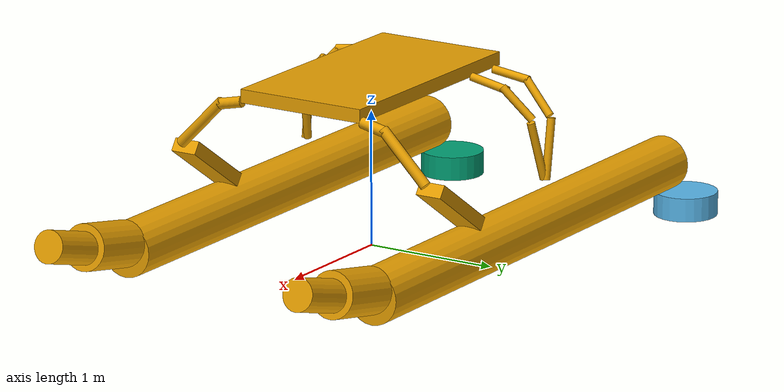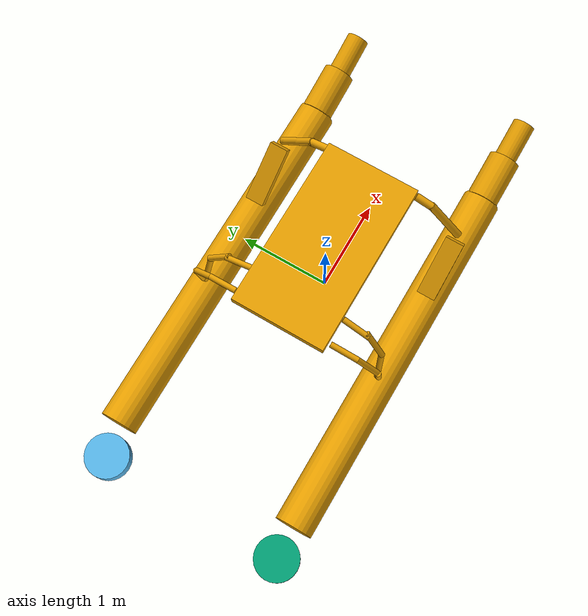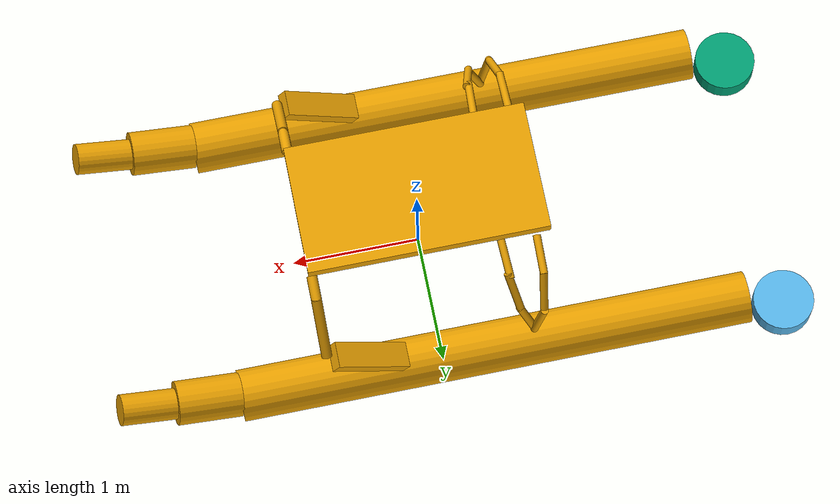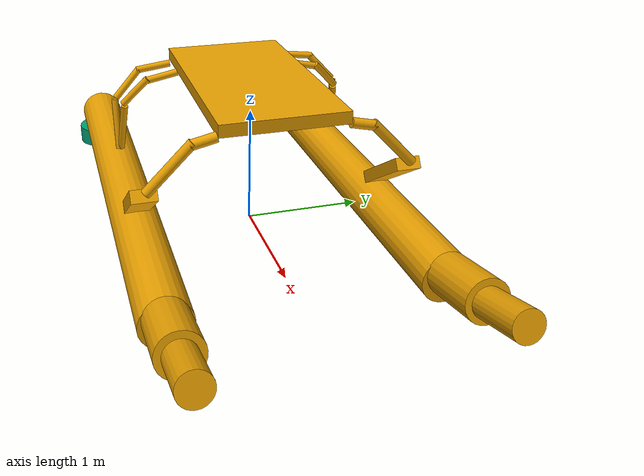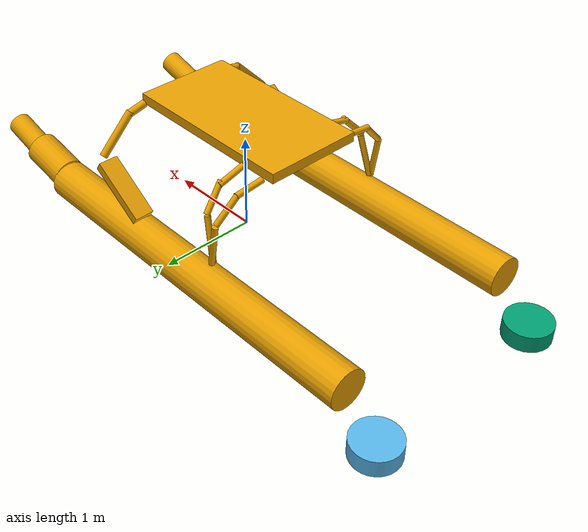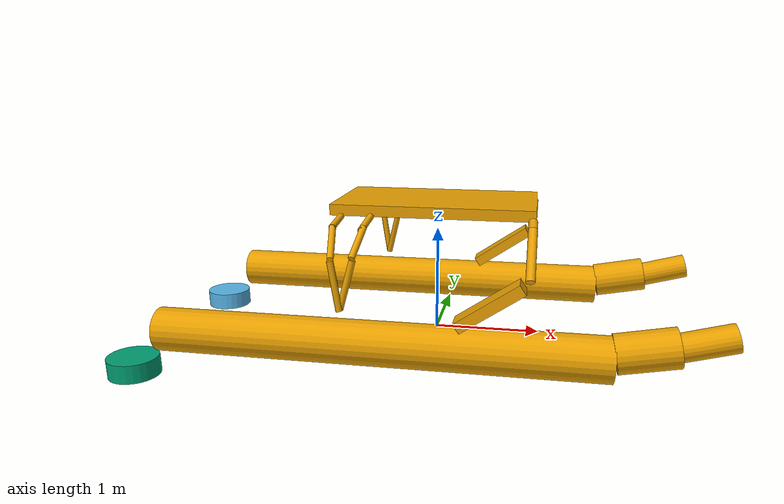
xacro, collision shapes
<?xml version="1.0"?>
<robot name="boat">
  <link name="base_link">
    <inertial>
      <origin xyz="0 0 0.124229" rpy="0 0 0"/>
      <mass value="227"/>
      <inertia ixx="181.42" ixy="0" ixz="0" iyy="408.203" iyz="0" izz="495.037"/>
    </inertial>
    <collision name="left_float">
      <origin xyz="-0.4 1.03 0.2" rpy="3.14159 1.57079 3.14159"/>
      <geometry>
        <cylinder length="4" radius="0.2"/>
      </geometry>
    </collision>
    <collision name="left_mid_float">
      <origin xyz="1.85 1.03 0.3" rpy="0 1.38 0"/>
      <geometry>
        <cylinder length="0.5" radius="0.17"/>
      </geometry>
    </collision>
    <collision name="left_front_float">
      <origin xyz="2.3 1.03 0.4" rpy="0 1.3 0"/>
      <geometry>
        <cylinder length="0.45" radius="0.12"/>
      </geometry>
    </collision>
    <collision name="front_left_beam_lower">
      <origin xyz="0.9 0.85 1" rpy="0.78 0 0"/>
      <geometry>
        <cylinder length="0.5" radius="0.04"/>
      </geometry>
    </collision>
    <collision name="front_left_beam_upper">
      <origin xyz="0.9 0.6 1.18" rpy="1.35 0 0"/>
      <geometry>
        <cylinder length="0.2" radius="0.04"/>
      </geometry>
    </collision>
    <collision name="mid_left_beam_lower">
      <origin xyz="-0.65 0.99 0.7" rpy="0.1 0.25 0"/>
      <geometry>
        <cylinder length="0.45" radius="0.03"/>
      </geometry>
    </collision>
    <collision name="mid_left_beam_medium">
      <origin xyz="-0.57 0.87 1.05" rpy="0.75 0.25 0"/>
      <geometry>
        <cylinder length="0.32" radius="0.03"/>
      </geometry>
    </collision>
    <collision name="mid_left_beam_upper">
      <origin xyz="-0.55 0.65 1.17" rpy="1.35 0.25 0"/>
      <geometry>
        <cylinder length="0.3" radius="0.03"/>
      </geometry>
    </collision>
    <collision name="rear_left_beam_lower">
      <origin xyz="-0.74 1.03 0.7" rpy="0 -0.15 0"/>
      <geometry>
        <cylinder length="0.45" radius="0.03"/>
      </geometry>
    </collision>
    <collision name="rear_left_beam_medium">
      <origin xyz="-0.79 0.91 1.05" rpy="0.75 -0.15 0"/>
      <geometry>
        <cylinder length="0.32" radius="0.03"/>
      </geometry>
    </collision>
    <collision name="rear_left_beam_upper">
      <origin xyz="-0.81 0.67 1.18" rpy="1.45 -0.15 0"/>
      <geometry>
        <cylinder length="0.3" radius="0.03"/>
      </geometry>
    </collision>
    <collision name="left_joint_collision">
      <origin xyz="0.58 1.03 0.6" rpy="0 -0.6 0"/>
      <geometry>
        <box size="0.65 0.2 0.1"/>
      </geometry>
    </collision>
    <collision name="right_float">
      <origin xyz="-0.4 -1.03 0.2" rpy="3.14159 1.57079 3.14159"/>
      <geometry>
        <cylinder length="4" radius="0.2"/>
      </geometry>
    </collision>
    <collision name="right_mid_float">
      <origin xyz="1.85 -1.03 0.3" rpy="0 1.38 0"/>
      <geometry>
        <cylinder length="0.5" radius="0.17"/>
      </geometry>
    </collision>
    <collision name="right_front_float">
      <origin xyz="2.3 -1.03 0.4" rpy="0 1.3 0"/>
      <geometry>
        <cylinder length="0.45" radius="0.12"/>
      </geometry>
    </collision>
    <collision name="front_right_beam_lower">
      <origin xyz="0.9 -0.85 1" rpy="-0.78 0 0"/>
      <geometry>
        <cylinder length="0.5" radius="0.04"/>
      </geometry>
    </collision>
    <collision name="front_right_beam_upper">
      <origin xyz="0.9 -0.6 1.18" rpy="-1.35 0 0"/>
      <geometry>
        <cylinder length="0.2" radius="0.04"/>
      </geometry>
    </collision>
    <collision name="mid_right_beam_lower">
      <origin xyz="-0.65 -0.99 0.7" rpy="-0.1 0.25 0"/>
      <geometry>
        <cylinder length="0.45" radius="0.03"/>
      </geometry>
    </collision>
    <collision name="mid_right_beam_medium">
      <origin xyz="-0.57 -0.87 1.05" rpy="-0.75 0.25 0"/>
      <geometry>
        <cylinder length="0.32" radius="0.03"/>
      </geometry>
    </collision>
    <collision name="mid_right_beam_upper">
      <origin xyz="-0.55 -0.65 1.17" rpy="-1.35 0.25 0"/>
      <geometry>
        <cylinder length="0.3" radius="0.03"/>
      </geometry>
    </collision>
    <collision name="rear_right_beam_lower">
      <origin xyz="-0.74 -1.03 0.7" rpy="0 -0.15 0"/>
      <geometry>
        <cylinder length="0.45" radius="0.03"/>
      </geometry>
    </collision>
    <collision name="rear_right_beam_medium">
      <origin xyz="-0.79 -0.91 1.05" rpy="-0.75 -0.15 0"/>
      <geometry>
        <cylinder length="0.32" radius="0.03"/>
      </geometry>
    </collision>
    <collision name="rear_right_beam_upper">
      <origin xyz="-0.81 -0.67 1.18" rpy="-1.45 -0.15 0"/>
      <geometry>
        <cylinder length="0.3" radius="0.03"/>
      </geometry>
    </collision>
    <collision name="right_joint_collision">
      <origin xyz="0.58 -1.03 0.6" rpy="0 -0.6 0"/>
      <geometry>
        <box size="0.65 0.2 0.1"/>
      </geometry>
    </collision>
    <collision name="top_base_collision">
      <origin xyz="0 0 1.25" rpy="0 0 0"/>
      <geometry>
        <box size="1.85 1 0.1"/>
      </geometry>
    </collision>

    <visual name="base_link_visual">
      <origin xyz="0 0 0" rpy="0 0 0"/>
      <geometry>
        <mesh filename="model://boat/meshes/body.dae" scale="1 1 1"/>
      </geometry>
    </visual>

    <visual name="right_engine_visual">
      <origin xyz="-2.37378 -1.02713 0.318237" rpy="0 0 0"/>
      <geometry>
        <mesh filename="model://boat/meshes/engine.dae" scale="1 1 1"/>
      </geometry>
    </visual>

    <visual name="left_engine_visual">
      <origin xyz="-2.37378 1.02713 0.318237" rpy="0 0 0"/>
      <geometry>
        <mesh filename="model://boat/meshes/engine.dae" scale="1 1 1"/>
      </geometry>
    </visual>
  </link>

  <link name="left_propeller_link">
    <inertial>
      <origin xyz="0 0 0" rpy="0 0 0"/>
      <mass value="0.5"/>
      <inertia ixx="0.008545" ixy="0" ixz="0" iyy="0.008545" iyz="0" izz="0.0144"/>
    </inertial>
    <visual>
      <origin xyz="0 0 0" rpy="0 0 0"/>
      <geometry>
        <mesh filename="model://boat/meshes/propeller.dae" scale="1 1 1"/>
      </geometry>
    </visual>
    <collision>
      <origin xyz="-0.08 0 0" rpy="3.14159 0 3.14159"/>
      <geometry>
        <cylinder length="0.18" radius="0.24"/>
      </geometry>
    </collision>
  </link>

  <link name="right_propeller_link">
    <inertial>
      <origin xyz="0 0 0" rpy="0 0 0"/>
      <mass value="0.5"/>
      <inertia ixx="0.008545" ixy="0" ixz="0" iyy="0.008545" iyz="0" izz="0.0144"/>
    </inertial>
    <visual>
      <origin xyz="0 0 0" rpy="0 0 0"/>
      <geometry>
        <mesh filename="model://boat/meshes/propeller.dae" scale="1 1 1"/>
      </geometry>
    </visual>
    <collision>
      <origin xyz="-0.08 0 0" rpy="3.14159 0 3.14159"/>
      <geometry>
        <cylinder length="0.18" radius="0.24"/>
      </geometry>
    </collision>
  </link>

  <joint name="left_engine_propeller_joint" type="revolute">
      <parent link="base_link"/>
      <child link="left_propeller_link"/>
      <origin xyz="-2.65193 1.02713 -0.191134" rpy="0 0 0"/>
      <axis xyz="1 0 0"/>
      <limit lower="-1000" upper="1000" effort="10" velocity="1000"/>
  </joint>

  <joint name="right_engine_propeller_joint" type="revolute">
      <parent link="base_link"/>
      <child link="right_propeller_link"/>
      <origin xyz="-2.65193 -1.02713 -0.191134" rpy="0 0 0"/>
      <axis xyz="1 0 0"/>
      <limit lower="-1000" upper="1000" effort="10" velocity="1000"/>
  </joint>

  <gazebo>
    <plugin name="usv_dynamics_boat" filename="libusv_gazebo_dynamics_plugin.so">
      <bodyName>base_link</bodyName>
      <waterLevel>0</waterLevel>
      <waterDensity>997.8</waterDensity>
      <xDotU>0.0</xDotU>
      <yDotV>0.0</yDotV>
      <nDotR>0.0</nDotR>
      <xU>51.3</xU>
      <xUU>72.4</xUU>
      <yV>40.0</yV>
      <yVV>0.0</yVV>
      <zW>500.0</zW>
      <kP>50.0</kP>
      <mQ>50.0</mQ>
      <nR>400.0</nR>
      <nRR>0.0</nRR>
      <hullRadius>0.213</hullRadius>
      <boatWidth>5</boatWidth>
      <boatLength>5</boatLength>
      <length_n>2</length_n>
      <wave_model>ocean_waves</wave_model>
    </plugin>
    <plugin name="boat_thrust_plugin" filename="libusv_gazebo_thrust_plugin.so">
      <robotNamespace>/boat</robotNamespace>
      <thruster>
        <linkName>left_propeller_link</linkName>
        <propJointName>left_engine_propeller_joint</propJointName>
        <engineJointName>left_engine_propeller_joint</engineJointName>
        <cmdTopic>/boat/thrusters/left_thrust_cmd</cmdTopic>
        <angleTopic>boat/thrusters/left_thrust_angle</angleTopic>
        <enableAngle>false</enableAngle>
        <maxForceFwd>200</maxForceFwd>
        <maxForceRev>-200</maxForceRev>
      </thruster>
      <thruster>
        <linkName>right_propeller_link</linkName>
        <propJointName>right_engine_propeller_joint</propJointName>
        <engineJointName>right_engine_propeller_joint</engineJointName>
        <cmdTopic>/boat/thrusters/right_thrust_cmd</cmdTopic>
        <angleTopic>boat/thrusters/right_thrust_angle</angleTopic>
        <enableAngle>false</enableAngle>
        <maxForceFwd>200</maxForceFwd>
        <maxForceRev>-200</maxForceRev>
      </thruster>
    </plugin>
  </gazebo>
</robot>
